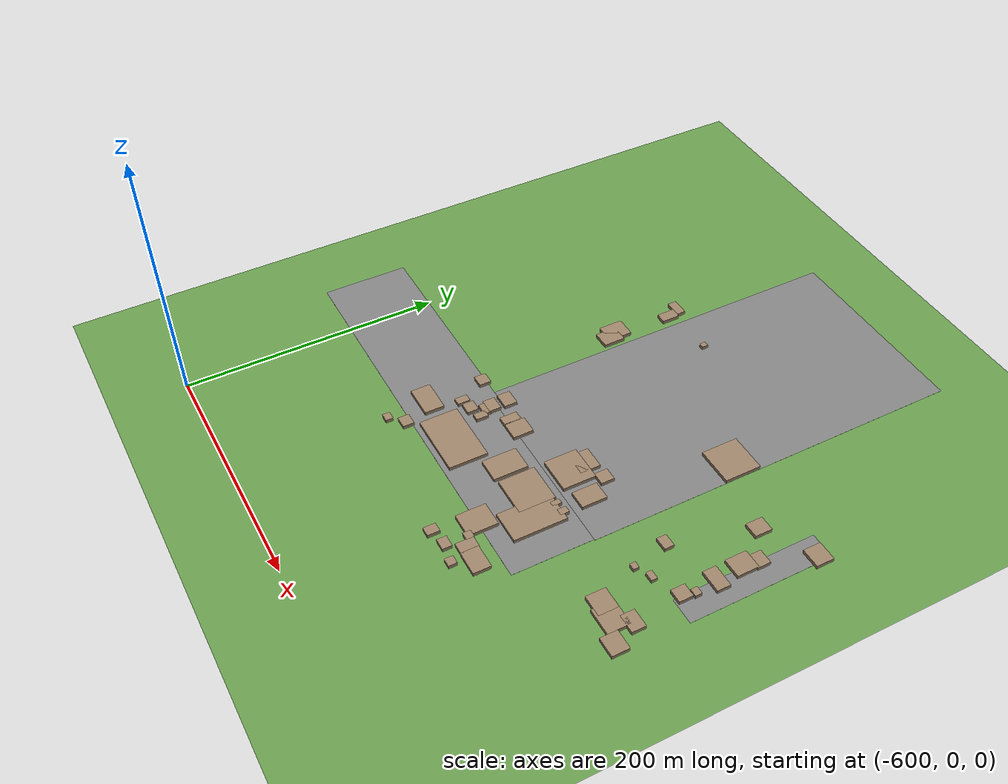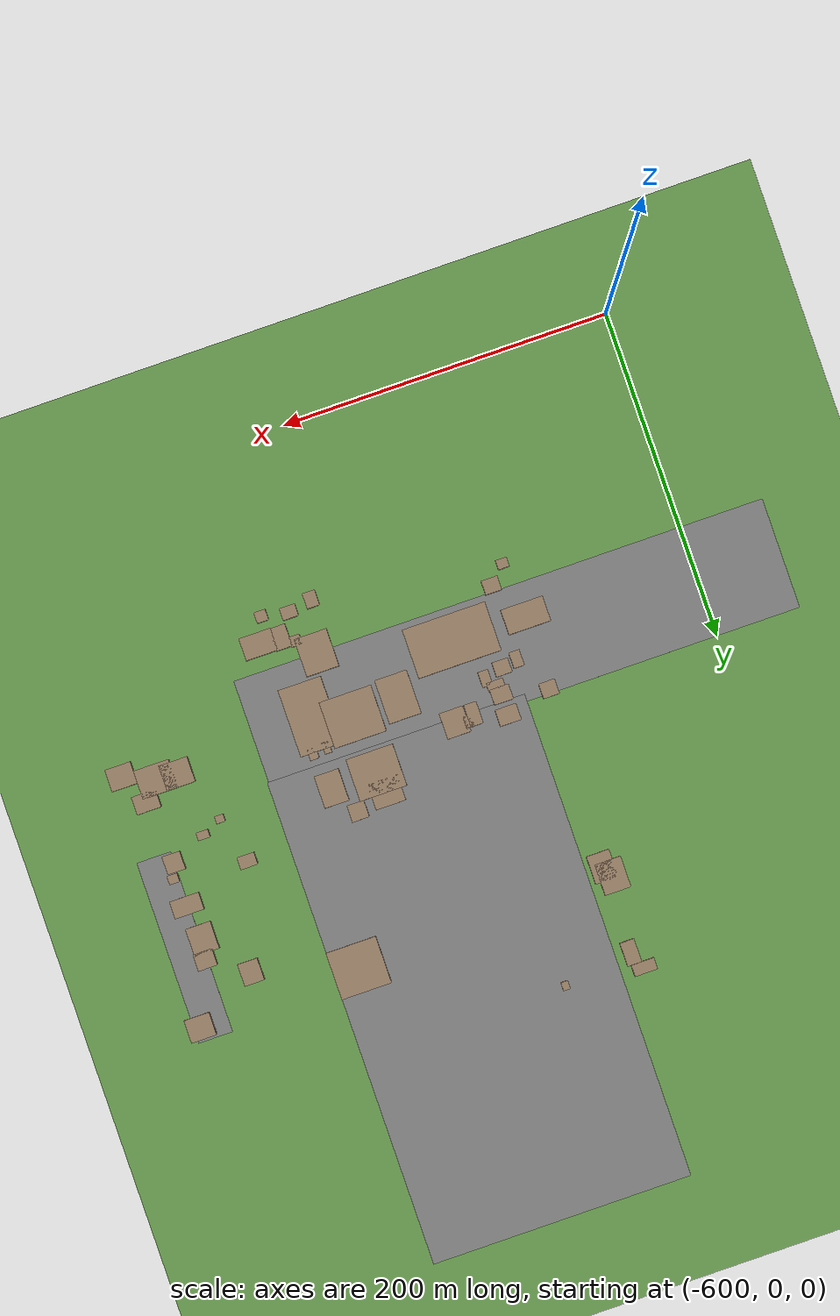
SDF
<sdf version="1.9">
 <world name="kimje_farmland">
  <model name="ground_plane">
   <static>true</static>
   <link name="link">
    <collision name="collision">
     <geometry><plane><normal>0 0 1</normal><size>2000 2000</size></plane></geometry>
    </collision>
    <visual name="visual">
     <geometry><plane><normal>0 0 1</normal><size>2000 2000</size></plane></geometry>
     <material><ambient>0.4 0.6 0.3 1</ambient><diffuse>0.4 0.6 0.3 1</diffuse></material>
    </visual>
   </link>
  </model>
  <model name="osm_66">
   <static>true</static>
   <pose>-402.18 344.55 0.040 0 0 0</pose>
   <link name="link">
    <collision name="collision"><geometry><box><size>159.92 299.17 0.080</size></box></geometry></collision>
    <visual name="visual">
     <geometry><box><size>159.92 299.17 0.080</size></box></geometry>
     <material><ambient>0.5 0.5 0.5 1</ambient><diffuse>0.5 0.5 0.5 1</diffuse></material>
    </visual>
   </link>
  </model>
  <model name="osm_80">
   <static>true</static>
   <pose>-244.82 270.52 0.040 0 0 0</pose>
   <link name="link">
    <collision name="collision"><geometry><box><size>21.00 111.88 0.080</size></box></geometry></collision>
    <visual name="visual">
     <geometry><box><size>21.00 111.88 0.080</size></box></geometry>
     <material><ambient>0.5 0.5 0.5 1</ambient><diffuse>0.5 0.5 0.5 1</diffuse></material>
    </visual>
   </link>
  </model>
  <model name="osm_122">
   <static>true</static>
   <pose>-487.27 165.93 0.040 0 0 0</pose>
   <link name="link">
    <collision name="collision"><geometry><box><size>328.39 67.48 0.080</size></box></geometry></collision>
    <visual name="visual">
     <geometry><box><size>328.39 67.48 0.080</size></box></geometry>
     <material><ambient>0.5 0.5 0.5 1</ambient><diffuse>0.5 0.5 0.5 1</diffuse></material>
    </visual>
   </link>
  </model>
  <model name="osm_249">
   <static>true</static>
   <pose>-448.83 364.54 1.500 0 0 0</pose>
   <link name="link">
    <collision name="collision"><geometry><box><size>4.24 4.94 3.000</size></box></geometry></collision>
    <visual name="visual">
     <geometry><box><size>4.24 4.94 3.000</size></box></geometry>
     <material><ambient>0.6 0.5 0.4 1</ambient><diffuse>0.6 0.5 0.4 1</diffuse></material>
    </visual>
   </link>
  </model>
  <model name="osm_257">
   <static>true</static>
   <pose>-491.29 358.64 1.500 0 0 0</pose>
   <link name="link">
    <collision name="collision"><geometry><box><size>8.76 14.26 3.000</size></box></geometry></collision>
    <visual name="visual">
     <geometry><box><size>8.76 14.26 3.000</size></box></geometry>
     <material><ambient>0.6 0.5 0.4 1</ambient><diffuse>0.6 0.5 0.4 1</diffuse></material>
    </visual>
   </link>
  </model>
  <model name="osm_258">
   <static>true</static>
   <pose>-496.07 369.32 1.500 0 0 0</pose>
   <link name="link">
    <collision name="collision"><geometry><box><size>14.07 6.98 3.000</size></box></geometry></collision>
    <visual name="visual">
     <geometry><box><size>14.07 6.98 3.000</size></box></geometry>
     <material><ambient>0.6 0.5 0.4 1</ambient><diffuse>0.6 0.5 0.4 1</diffuse></material>
    </visual>
   </link>
  </model>
  <model name="osm_261">
   <static>true</static>
   <pose>-496.02 312.69 1.500 0 0 0</pose>
   <link name="link">
    <collision name="collision"><geometry><box><size>16.04 19.04 3.000</size></box></geometry></collision>
    <visual name="visual">
     <geometry><box><size>16.04 19.04 3.000</size></box></geometry>
     <material><ambient>0.6 0.5 0.4 1</ambient><diffuse>0.6 0.5 0.4 1</diffuse></material>
    </visual>
   </link>
  </model>
  <model name="osm_262">
   <static>true</static>
   <pose>-491.92 305.66 1.500 0 0 0</pose>
   <link name="link">
    <collision name="collision"><geometry><box><size>13.99 16.99 3.000</size></box></geometry></collision>
    <visual name="visual">
     <geometry><box><size>13.99 16.99 3.000</size></box></geometry>
     <material><ambient>0.6 0.5 0.4 1</ambient><diffuse>0.6 0.5 0.4 1</diffuse></material>
    </visual>
   </link>
  </model>
  <model name="osm_289">
   <static>true</static>
   <pose>-430.40 294.58 0.025 0 0 0</pose>
   <link name="link">
    <collision name="collision"><geometry><box><size>86.69 66.10 0.050</size></box></geometry></collision>
    <visual name="visual">
     <geometry><box><size>86.69 66.10 0.050</size></box></geometry>
     <material><ambient>0.3 0.6 0.2 1</ambient><diffuse>0.3 0.6 0.2 1</diffuse></material>
    </visual>
   </link>
  </model>
  <model name="osm_388">
   <static>true</static>
   <pose>-238.53 317.92 1.500 0 0 0</pose>
   <link name="link">
    <collision name="collision"><geometry><box><size>15.59 13.88 3.000</size></box></geometry></collision>
    <visual name="visual">
     <geometry><box><size>15.59 13.88 3.000</size></box></geometry>
     <material><ambient>0.6 0.5 0.4 1</ambient><diffuse>0.6 0.5 0.4 1</diffuse></material>
    </visual>
   </link>
  </model>
  <model name="osm_395">
   <static>true</static>
   <pose>-254.26 281.24 1.500 0 0 0</pose>
   <link name="link">
    <collision name="collision"><geometry><box><size>11.80 10.22 3.000</size></box></geometry></collision>
    <visual name="visual">
     <geometry><box><size>11.80 10.22 3.000</size></box></geometry>
     <material><ambient>0.6 0.5 0.4 1</ambient><diffuse>0.6 0.5 0.4 1</diffuse></material>
    </visual>
   </link>
  </model>
  <model name="osm_396">
   <static>true</static>
   <pose>-256.73 269.06 1.500 0 0 0</pose>
   <link name="link">
    <collision name="collision"><geometry><box><size>15.35 16.89 3.000</size></box></geometry></collision>
    <visual name="visual">
     <geometry><box><size>15.35 16.89 3.000</size></box></geometry>
     <material><ambient>0.6 0.5 0.4 1</ambient><diffuse>0.6 0.5 0.4 1</diffuse></material>
    </visual>
   </link>
  </model>
  <model name="osm_397">
   <static>true</static>
   <pose>-277.24 296.82 1.500 0 0 0</pose>
   <link name="link">
    <collision name="collision"><geometry><box><size>12.23 13.44 3.000</size></box></geometry></collision>
    <visual name="visual">
     <geometry><box><size>12.23 13.44 3.000</size></box></geometry>
     <material><ambient>0.6 0.5 0.4 1</ambient><diffuse>0.6 0.5 0.4 1</diffuse></material>
    </visual>
   </link>
  </model>
  <model name="osm_398">
   <static>true</static>
   <pose>-337.71 315.15 1.500 0 0 0</pose>
   <link name="link">
    <collision name="collision"><geometry><box><size>30.81 28.77 3.000</size></box></geometry></collision>
    <visual name="visual">
     <geometry><box><size>30.81 28.77 3.000</size></box></geometry>
     <material><ambient>0.6 0.5 0.4 1</ambient><diffuse>0.6 0.5 0.4 1</diffuse></material>
    </visual>
   </link>
  </model>
  <model name="osm_399">
   <static>true</static>
   <pose>-254.48 247.66 1.500 0 0 0</pose>
   <link name="link">
    <collision name="collision"><geometry><box><size>17.98 10.59 3.000</size></box></geometry></collision>
    <visual name="visual">
     <geometry><box><size>17.98 10.59 3.000</size></box></geometry>
     <material><ambient>0.6 0.5 0.4 1</ambient><diffuse>0.6 0.5 0.4 1</diffuse></material>
    </visual>
   </link>
  </model>
  <model name="osm_425">
   <static>true</static>
   <pose>-496.51 196.93 1.500 0 0 0</pose>
   <link name="link">
    <collision name="collision"><geometry><box><size>9.89 9.24 3.000</size></box></geometry></collision>
    <visual name="visual">
     <geometry><box><size>9.89 9.24 3.000</size></box></geometry>
     <material><ambient>0.6 0.5 0.4 1</ambient><diffuse>0.6 0.5 0.4 1</diffuse></material>
    </visual>
   </link>
  </model>
  <model name="osm_426">
   <static>true</static>
   <pose>-468.89 203.56 1.500 0 0 0</pose>
   <link name="link">
    <collision name="collision"><geometry><box><size>13.06 10.19 3.000</size></box></geometry></collision>
    <visual name="visual">
     <geometry><box><size>13.06 10.19 3.000</size></box></geometry>
     <material><ambient>0.6 0.5 0.4 1</ambient><diffuse>0.6 0.5 0.4 1</diffuse></material>
    </visual>
   </link>
  </model>
  <model name="osm_427">
   <static>true</static>
   <pose>-469.08 190.98 1.500 0 0 0</pose>
   <link name="link">
    <collision name="collision"><geometry><box><size>11.72 9.38 3.000</size></box></geometry></collision>
    <visual name="visual">
     <geometry><box><size>11.72 9.38 3.000</size></box></geometry>
     <material><ambient>0.6 0.5 0.4 1</ambient><diffuse>0.6 0.5 0.4 1</diffuse></material>
    </visual>
   </link>
  </model>
  <model name="osm_428">
   <static>true</static>
   <pose>-484.22 174.18 1.500 0 0 0</pose>
   <link name="link">
    <collision name="collision"><geometry><box><size>6.48 9.72 3.000</size></box></geometry></collision>
    <visual name="visual">
     <geometry><box><size>6.48 9.72 3.000</size></box></geometry>
     <material><ambient>0.6 0.5 0.4 1</ambient><diffuse>0.6 0.5 0.4 1</diffuse></material>
    </visual>
   </link>
  </model>
  <model name="osm_429">
   <static>true</static>
   <pose>-474.57 176.10 1.500 0 0 0</pose>
   <link name="link">
    <collision name="collision"><geometry><box><size>9.80 8.85 3.000</size></box></geometry></collision>
    <visual name="visual">
     <geometry><box><size>9.80 8.85 3.000</size></box></geometry>
     <material><ambient>0.6 0.5 0.4 1</ambient><diffuse>0.6 0.5 0.4 1</diffuse></material>
    </visual>
   </link>
  </model>
  <model name="osm_430">
   <static>true</static>
   <pose>-467.73 184.57 1.500 0 0 0</pose>
   <link name="link">
    <collision name="collision"><geometry><box><size>10.26 5.33 3.000</size></box></geometry></collision>
    <visual name="visual">
     <geometry><box><size>10.26 5.33 3.000</size></box></geometry>
     <material><ambient>0.6 0.5 0.4 1</ambient><diffuse>0.6 0.5 0.4 1</diffuse></material>
    </visual>
   </link>
  </model>
  <model name="osm_431">
   <static>true</static>
   <pose>-463.15 179.04 1.500 0 0 0</pose>
   <link name="link">
    <collision name="collision"><geometry><box><size>6.20 9.38 3.000</size></box></geometry></collision>
    <visual name="visual">
     <geometry><box><size>6.20 9.38 3.000</size></box></geometry>
     <material><ambient>0.6 0.5 0.4 1</ambient><diffuse>0.6 0.5 0.4 1</diffuse></material>
    </visual>
   </link>
  </model>
  <model name="osm_432">
   <static>true</static>
   <pose>-497.61 151.85 1.500 0 0 0</pose>
   <link name="link">
    <collision name="collision"><geometry><box><size>25.92 15.38 3.000</size></box></geometry></collision>
    <visual name="visual">
     <geometry><box><size>25.92 15.38 3.000</size></box></geometry>
     <material><ambient>0.6 0.5 0.4 1</ambient><diffuse>0.6 0.5 0.4 1</diffuse></material>
    </visual>
   </link>
  </model>
  <model name="osm_433">
   <static>true</static>
   <pose>-449.77 196.50 1.500 0 0 0</pose>
   <link name="link">
    <collision name="collision"><geometry><box><size>7.77 13.50 3.000</size></box></geometry></collision>
    <visual name="visual">
     <geometry><box><size>7.77 13.50 3.000</size></box></geometry>
     <material><ambient>0.6 0.5 0.4 1</ambient><diffuse>0.6 0.5 0.4 1</diffuse></material>
    </visual>
   </link>
  </model>
  <model name="osm_434">
   <static>true</static>
   <pose>-445.63 199.81 1.500 0 0 0</pose>
   <link name="link">
    <collision name="collision"><geometry><box><size>4.82 7.24 3.000</size></box></geometry></collision>
    <visual name="visual">
     <geometry><box><size>4.82 7.24 3.000</size></box></geometry>
     <material><ambient>0.6 0.5 0.4 1</ambient><diffuse>0.6 0.5 0.4 1</diffuse></material>
    </visual>
   </link>
  </model>
  <model name="osm_435">
   <static>true</static>
   <pose>-438.06 197.67 1.500 0 0 0</pose>
   <link name="link">
    <collision name="collision"><geometry><box><size>14.64 15.91 3.000</size></box></geometry></collision>
    <visual name="visual">
     <geometry><box><size>14.64 15.91 3.000</size></box></geometry>
     <material><ambient>0.6 0.5 0.4 1</ambient><diffuse>0.6 0.5 0.4 1</diffuse></material>
    </visual>
   </link>
  </model>
  <model name="osm_436">
   <static>true</static>
   <pose>-386.79 223.19 1.500 0 0 0</pose>
   <link name="link">
    <collision name="collision"><geometry><box><size>18.44 15.77 3.000</size></box></geometry></collision>
    <visual name="visual">
     <geometry><box><size>18.44 15.77 3.000</size></box></geometry>
     <material><ambient>0.6 0.5 0.4 1</ambient><diffuse>0.6 0.5 0.4 1</diffuse></material>
    </visual>
   </link>
  </model>
  <model name="osm_437">
   <static>true</static>
   <pose>-384.82 210.32 1.500 0 0 0</pose>
   <link name="link">
    <collision name="collision"><geometry><box><size>29.05 25.83 3.000</size></box></geometry></collision>
    <visual name="visual">
     <geometry><box><size>29.05 25.83 3.000</size></box></geometry>
     <material><ambient>0.6 0.5 0.4 1</ambient><diffuse>0.6 0.5 0.4 1</diffuse></material>
    </visual>
   </link>
  </model>
  <model name="osm_438">
   <static>true</static>
   <pose>-382.46 174.88 1.500 0 0 0</pose>
   <link name="link">
    <collision name="collision"><geometry><box><size>32.05 28.42 3.000</size></box></geometry></collision>
    <visual name="visual">
     <geometry><box><size>32.05 28.42 3.000</size></box></geometry>
     <material><ambient>0.6 0.5 0.4 1</ambient><diffuse>0.6 0.5 0.4 1</diffuse></material>
    </visual>
   </link>
  </model>
  <model name="osm_439">
   <static>true</static>
   <pose>-411.26 172.53 1.500 0 0 0</pose>
   <link name="link">
    <collision name="collision"><geometry><box><size>19.84 26.87 3.000</size></box></geometry></collision>
    <visual name="visual">
     <geometry><box><size>19.84 26.87 3.000</size></box></geometry>
     <material><ambient>0.6 0.5 0.4 1</ambient><diffuse>0.6 0.5 0.4 1</diffuse></material>
    </visual>
   </link>
  </model>
  <model name="osm_440">
   <static>true</static>
   <pose>-451.91 151.39 1.500 0 0 0</pose>
   <link name="link">
    <collision name="collision"><geometry><box><size>51.18 30.08 3.000</size></box></geometry></collision>
    <visual name="visual">
     <geometry><box><size>51.18 30.08 3.000</size></box></geometry>
     <material><ambient>0.6 0.5 0.4 1</ambient><diffuse>0.6 0.5 0.4 1</diffuse></material>
    </visual>
   </link>
  </model>
  <model name="osm_441">
   <static>true</static>
   <pose>-484.38 128.66 1.500 0 0 0</pose>
   <link name="link">
    <collision name="collision"><geometry><box><size>9.99 8.64 3.000</size></box></geometry></collision>
    <visual name="visual">
     <geometry><box><size>9.99 8.64 3.000</size></box></geometry>
     <material><ambient>0.6 0.5 0.4 1</ambient><diffuse>0.6 0.5 0.4 1</diffuse></material>
    </visual>
   </link>
  </model>
  <model name="osm_442">
   <static>true</static>
   <pose>-494.66 118.62 1.500 0 0 0</pose>
   <link name="link">
    <collision name="collision"><geometry><box><size>6.86 5.72 3.000</size></box></geometry></collision>
    <visual name="visual">
     <geometry><box><size>6.86 5.72 3.000</size></box></geometry>
     <material><ambient>0.6 0.5 0.4 1</ambient><diffuse>0.6 0.5 0.4 1</diffuse></material>
    </visual>
   </link>
  </model>
  <model name="osm_486">
   <static>true</static>
   <pose>-367.34 228.24 1.500 0 0 0</pose>
   <link name="link">
    <collision name="collision"><geometry><box><size>10.49 10.32 3.000</size></box></geometry></collision>
    <visual name="visual">
     <geometry><box><size>10.49 10.32 3.000</size></box></geometry>
     <material><ambient>0.6 0.5 0.4 1</ambient><diffuse>0.6 0.5 0.4 1</diffuse></material>
    </visual>
   </link>
  </model>
  <model name="osm_487">
   <static>true</static>
   <pose>-357.04 210.54 1.500 0 0 0</pose>
   <link name="link">
    <collision name="collision"><geometry><box><size>15.05 19.68 3.000</size></box></geometry></collision>
    <visual name="visual">
     <geometry><box><size>15.05 19.68 3.000</size></box></geometry>
     <material><ambient>0.6 0.5 0.4 1</ambient><diffuse>0.6 0.5 0.4 1</diffuse></material>
    </visual>
   </link>
  </model>
  <model name="osm_490">
   <static>true</static>
   <pose>-353.41 187.79 1.500 0 0 0</pose>
   <link name="link">
    <collision name="collision"><geometry><box><size>5.51 6.85 3.000</size></box></geometry></collision>
    <visual name="visual">
     <geometry><box><size>5.51 6.85 3.000</size></box></geometry>
     <material><ambient>0.6 0.5 0.4 1</ambient><diffuse>0.6 0.5 0.4 1</diffuse></material>
    </visual>
   </link>
  </model>
  <model name="osm_491">
   <static>true</static>
   <pose>-359.20 166.70 1.500 0 0 0</pose>
   <link name="link">
    <collision name="collision"><geometry><box><size>26.42 41.13 3.000</size></box></geometry></collision>
    <visual name="visual">
     <geometry><box><size>26.42 41.13 3.000</size></box></geometry>
     <material><ambient>0.6 0.5 0.4 1</ambient><diffuse>0.6 0.5 0.4 1</diffuse></material>
    </visual>
   </link>
  </model>
  <model name="osm_492">
   <static>true</static>
   <pose>-374.69 132.47 1.500 0 0 0</pose>
   <link name="link">
    <collision name="collision"><geometry><box><size>20.03 23.19 3.000</size></box></geometry></collision>
    <visual name="visual">
     <geometry><box><size>20.03 23.19 3.000</size></box></geometry>
     <material><ambient>0.6 0.5 0.4 1</ambient><diffuse>0.6 0.5 0.4 1</diffuse></material>
    </visual>
   </link>
  </model>
  <model name="osm_493">
   <static>true</static>
   <pose>-362.20 186.88 1.500 0 0 0</pose>
   <link name="link">
    <collision name="collision"><geometry><box><size>4.18 7.06 3.000</size></box></geometry></collision>
    <visual name="visual">
     <geometry><box><size>4.18 7.06 3.000</size></box></geometry>
     <material><ambient>0.6 0.5 0.4 1</ambient><diffuse>0.6 0.5 0.4 1</diffuse></material>
    </visual>
   </link>
  </model>
  <model name="osm_494">
   <static>true</static>
   <pose>-296.55 234.52 1.500 0 0 0</pose>
   <link name="link">
    <collision name="collision"><geometry><box><size>10.57 7.58 3.000</size></box></geometry></collision>
    <visual name="visual">
     <geometry><box><size>10.57 7.58 3.000</size></box></geometry>
     <material><ambient>0.6 0.5 0.4 1</ambient><diffuse>0.6 0.5 0.4 1</diffuse></material>
    </visual>
   </link>
  </model>
  <model name="osm_495">
   <static>true</static>
   <pose>-289.32 205.98 1.500 0 0 0</pose>
   <link name="link">
    <collision name="collision"><geometry><box><size>5.36 4.56 3.000</size></box></geometry></collision>
    <visual name="visual">
     <geometry><box><size>5.36 4.56 3.000</size></box></geometry>
     <material><ambient>0.6 0.5 0.4 1</ambient><diffuse>0.6 0.5 0.4 1</diffuse></material>
    </visual>
   </link>
  </model>
  <model name="osm_496">
   <static>true</static>
   <pose>-276.97 211.70 1.500 0 0 0</pose>
   <link name="link">
    <collision name="collision"><geometry><box><size>7.39 4.83 3.000</size></box></geometry></collision>
    <visual name="visual">
     <geometry><box><size>7.39 4.83 3.000</size></box></geometry>
     <material><ambient>0.6 0.5 0.4 1</ambient><diffuse>0.6 0.5 0.4 1</diffuse></material>
    </visual>
   </link>
  </model>
  <model name="osm_497">
   <static>true</static>
   <pose>-255.40 221.52 1.500 0 0 0</pose>
   <link name="link">
    <collision name="collision"><geometry><box><size>11.01 11.00 3.000</size></box></geometry></collision>
    <visual name="visual">
     <geometry><box><size>11.01 11.00 3.000</size></box></geometry>
     <material><ambient>0.6 0.5 0.4 1</ambient><diffuse>0.6 0.5 0.4 1</diffuse></material>
    </visual>
   </link>
  </model>
  <model name="osm_498">
   <static>true</static>
   <pose>-252.12 230.33 1.500 0 0 0</pose>
   <link name="link">
    <collision name="collision"><geometry><box><size>6.29 5.30 3.000</size></box></geometry></collision>
    <visual name="visual">
     <geometry><box><size>6.29 5.30 3.000</size></box></geometry>
     <material><ambient>0.6 0.5 0.4 1</ambient><diffuse>0.6 0.5 0.4 1</diffuse></material>
    </visual>
   </link>
  </model>
  <model name="osm_499">
   <static>true</static>
   <pose>-274.30 172.76 1.500 0 0 0</pose>
   <link name="link">
    <collision name="collision"><geometry><box><size>17.48 15.46 3.000</size></box></geometry></collision>
    <visual name="visual">
     <geometry><box><size>17.48 15.46 3.000</size></box></geometry>
     <material><ambient>0.6 0.5 0.4 1</ambient><diffuse>0.6 0.5 0.4 1</diffuse></material>
    </visual>
   </link>
  </model>
  <model name="osm_500">
   <static>true</static>
   <pose>-261.39 171.79 1.500 0 0 0</pose>
   <link name="link">
    <collision name="collision"><geometry><box><size>21.63 17.57 3.000</size></box></geometry></collision>
    <visual name="visual">
     <geometry><box><size>21.63 17.57 3.000</size></box></geometry>
     <material><ambient>0.6 0.5 0.4 1</ambient><diffuse>0.6 0.5 0.4 1</diffuse></material>
    </visual>
   </link>
  </model>
  <model name="osm_501">
   <static>true</static>
   <pose>-251.85 182.64 1.500 0 0 0</pose>
   <link name="link">
    <collision name="collision"><geometry><box><size>14.99 10.92 3.000</size></box></geometry></collision>
    <visual name="visual">
     <geometry><box><size>14.99 10.92 3.000</size></box></geometry>
     <material><ambient>0.6 0.5 0.4 1</ambient><diffuse>0.6 0.5 0.4 1</diffuse></material>
    </visual>
   </link>
  </model>
  <model name="osm_502">
   <static>true</static>
   <pose>-242.75 163.79 1.500 0 0 0</pose>
   <link name="link">
    <collision name="collision"><geometry><box><size>15.80 13.47 3.000</size></box></geometry></collision>
    <visual name="visual">
     <geometry><box><size>15.80 13.47 3.000</size></box></geometry>
     <material><ambient>0.6 0.5 0.4 1</ambient><diffuse>0.6 0.5 0.4 1</diffuse></material>
    </visual>
   </link>
  </model>
  <model name="osm_536">
   <static>true</static>
   <pose>-343.97 116.78 1.500 0 0 0</pose>
   <link name="link">
    <collision name="collision"><geometry><box><size>19.52 13.66 3.000</size></box></geometry></collision>
    <visual name="visual">
     <geometry><box><size>19.52 13.66 3.000</size></box></geometry>
     <material><ambient>0.6 0.5 0.4 1</ambient><diffuse>0.6 0.5 0.4 1</diffuse></material>
    </visual>
   </link>
  </model>
  <model name="osm_537">
   <static>true</static>
   <pose>-357.81 117.15 1.500 0 0 0</pose>
   <link name="link">
    <collision name="collision"><geometry><box><size>9.62 13.81 3.000</size></box></geometry></collision>
    <visual name="visual">
     <geometry><box><size>9.62 13.81 3.000</size></box></geometry>
     <material><ambient>0.6 0.5 0.4 1</ambient><diffuse>0.6 0.5 0.4 1</diffuse></material>
    </visual>
   </link>
  </model>
  <model name="osm_538">
   <static>true</static>
   <pose>-365.40 121.75 1.500 0 0 0</pose>
   <link name="link">
    <collision name="collision"><geometry><box><size>6.48 6.10 3.000</size></box></geometry></collision>
    <visual name="visual">
     <geometry><box><size>6.48 6.10 3.000</size></box></geometry>
     <material><ambient>0.6 0.5 0.4 1</ambient><diffuse>0.6 0.5 0.4 1</diffuse></material>
    </visual>
   </link>
  </model>
  <model name="osm_539">
   <static>true</static>
   <pose>-381.74 101.82 1.500 0 0 0</pose>
   <link name="link">
    <collision name="collision"><geometry><box><size>7.72 9.46 3.000</size></box></geometry></collision>
    <visual name="visual">
     <geometry><box><size>7.72 9.46 3.000</size></box></geometry>
     <material><ambient>0.6 0.5 0.4 1</ambient><diffuse>0.6 0.5 0.4 1</diffuse></material>
    </visual>
   </link>
  </model>
  <model name="osm_540">
   <static>true</static>
   <pose>-367.14 104.67 1.500 0 0 0</pose>
   <link name="link">
    <collision name="collision"><geometry><box><size>9.54 7.41 3.000</size></box></geometry></collision>
    <visual name="visual">
     <geometry><box><size>9.54 7.41 3.000</size></box></geometry>
     <material><ambient>0.6 0.5 0.4 1</ambient><diffuse>0.6 0.5 0.4 1</diffuse></material>
    </visual>
   </link>
  </model>
  <model name="osm_541">
   <static>true</static>
   <pose>-350.99 101.72 1.500 0 0 0</pose>
   <link name="link">
    <collision name="collision"><geometry><box><size>7.00 6.56 3.000</size></box></geometry></collision>
    <visual name="visual">
     <geometry><box><size>7.00 6.56 3.000</size></box></geometry>
     <material><ambient>0.6 0.5 0.4 1</ambient><diffuse>0.6 0.5 0.4 1</diffuse></material>
    </visual>
   </link>
  </model>
 </world>
</sdf>
